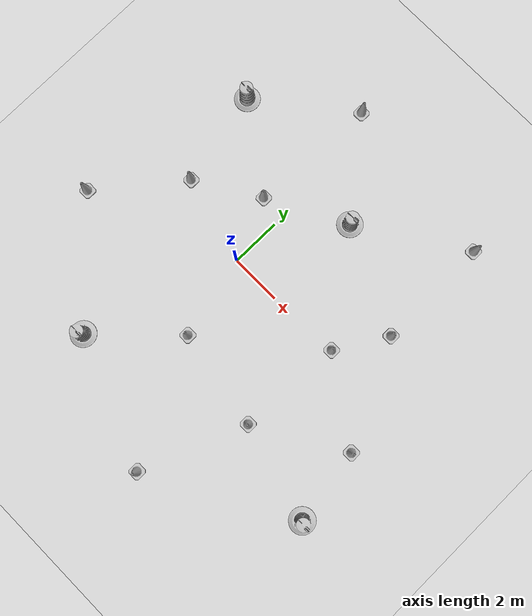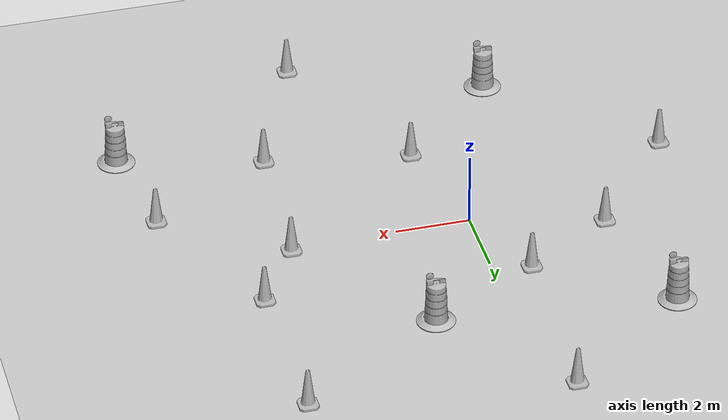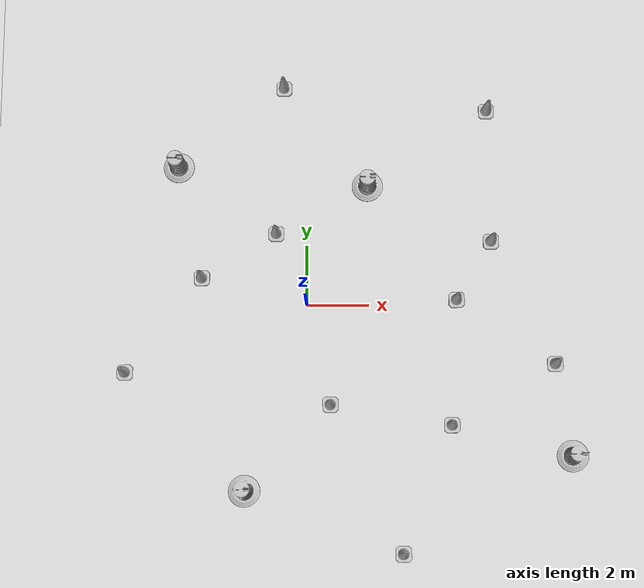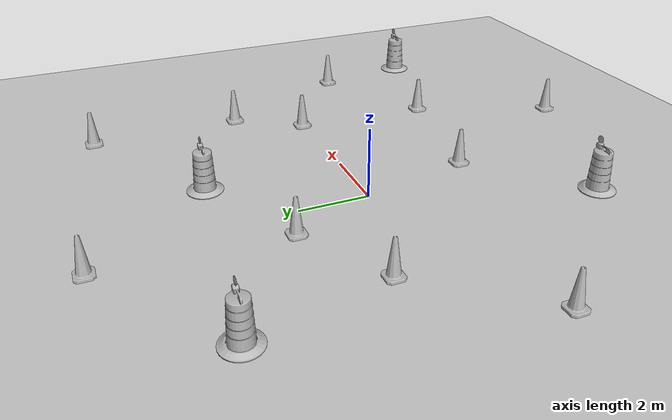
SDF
<sdf version="1.7">
 <world name="default">
  <light name="sun" type="directional">
   <pose>0 0 10 0 -0 0</pose>
   <diffuse>0.8 0.8 0.8 1</diffuse>
   <specular>0.2 0.2 0.2 1</specular>
   <attenuation>
    <range>1000</range>
    <constant>0.9</constant>
    <linear>0.01</linear>
    <quadratic>0.001</quadratic>
   </attenuation>
   <direction>-0.5 0.1 -0.9</direction>
   <spot><inner_angle>0</inner_angle><outer_angle>0</outer_angle><falloff>0</falloff></spot>
  </light>
  <model name="ground_plane">
   <static>1</static>
   <link name="link">
    <collision name="collision">
     <geometry><plane><normal>0 0 1</normal><size>100 100</size></plane></geometry>
     <surface>
      <contact><collide_bitmask>65535</collide_bitmask></contact>
      <friction><ode><mu>100</mu><mu2>50</mu2></ode></friction>
     </surface>
    </collision>
    <visual name="visual">
     <cast_shadows>0</cast_shadows>
     <geometry><plane><normal>0 0 1</normal><size>100 100</size></plane></geometry>
     <material>
      <script><uri>file://media/materials/scripts/gazebo.material</uri><name>Gazebo/Grey</name></script>
     </material>
    </visual>
   </link>
  </model>
  <gravity>0 0 -9.8</gravity>
  <magnetic_field>6e-06 2.3e-05 -4.2e-05</magnetic_field>
  <atmosphere type="adiabatic"/>
  <physics type="ode">
   <max_step_size>0.001</max_step_size>
   <real_time_factor>1</real_time_factor>
   <real_time_update_rate>1000</real_time_update_rate>
  </physics>
  <scene><ambient>0.4 0.4 0.4 1</ambient><background>0.7 0.7 0.7 1</background><shadows>1</shadows></scene>
  <spherical_coordinates>
   <surface_model>EARTH_WGS84</surface_model>
   <latitude_deg>0</latitude_deg>
   <longitude_deg>0</longitude_deg>
   <elevation>0</elevation>
   <heading_deg>0</heading_deg>
  </spherical_coordinates>
  <model name="Construction Barrel">
   <link name="link">
    <inertial>
     <pose>0 0 0.4 0 -0 0</pose>
     <mass>500</mass>
     <inertia><ixx>51.2096</ixx><iyy>51.2096</iyy><izz>25</izz><ixy>0</ixy><ixz>0</ixz><iyz>0</iyz></inertia>
    </inertial>
    <collision name="collision">
     <geometry><mesh><uri>model://construction_barrel/meshes/construction_barrel.dae</uri></mesh></geometry>
    </collision>
    <visual name="visual">
     <geometry><mesh><uri>model://construction_barrel/meshes/construction_barrel.dae</uri></mesh></geometry>
    </visual>
   </link>
   <pose>-4.24328 4.70581 1e-06 3e-06 2e-06 -2.3e-05</pose>
  </model>
  <model name="Construction Barrel_clone">
   <link name="link">
    <inertial>
     <pose>0 0 0.4 0 -0 0</pose>
     <mass>500</mass>
     <inertia><ixx>51.2096</ixx><iyy>51.2096</iyy><izz>25</izz><ixy>0</ixy><ixz>0</ixz><iyz>0</iyz></inertia>
    </inertial>
    <collision name="collision">
     <geometry><mesh><uri>model://construction_barrel/meshes/construction_barrel.dae</uri></mesh></geometry>
    </collision>
    <visual name="visual">
     <geometry><mesh><uri>model://construction_barrel/meshes/construction_barrel.dae</uri></mesh></geometry>
    </visual>
   </link>
   <pose>1.99992 3.99997 1e-06 3e-06 2e-06 -2.4e-05</pose>
  </model>
  <model name="Construction Barrel_clone_0">
   <link name="link">
    <inertial>
     <pose>0 0 0.4 0 -0 0</pose>
     <mass>500</mass>
     <inertia><ixx>51.2096</ixx><iyy>51.2096</iyy><izz>25</izz><ixy>0</ixy><ixz>0</ixz><iyz>0</iyz></inertia>
    </inertial>
    <collision name="collision">
     <geometry><mesh><uri>model://construction_barrel/meshes/construction_barrel.dae</uri></mesh></geometry>
    </collision>
    <visual name="visual">
     <geometry><mesh><uri>model://construction_barrel/meshes/construction_barrel.dae</uri></mesh></geometry>
    </visual>
   </link>
   <pose>-2.04039 -5.97341 0 0 0 -2.7e-05</pose>
  </model>
  <model name="Construction Barrel_clone_1">
   <link name="link">
    <inertial>
     <pose>0 0 0.4 0 -0 0</pose>
     <mass>500</mass>
     <inertia><ixx>51.2096</ixx><iyy>51.2096</iyy><izz>25</izz><ixy>0</ixy><ixz>0</ixz><iyz>0</iyz></inertia>
    </inertial>
    <collision name="collision">
     <geometry><mesh><uri>model://construction_barrel/meshes/construction_barrel.dae</uri></mesh></geometry>
    </collision>
    <visual name="visual">
     <geometry><mesh><uri>model://construction_barrel/meshes/construction_barrel.dae</uri></mesh></geometry>
    </visual>
   </link>
   <pose>8.45115 -4.97462 -0 0 0 -2.6e-05</pose>
  </model>
  <model name="Construction Cone">
   <link name="link">
    <collision name="collision">
     <geometry>
      <mesh><scale>10 10 10</scale><uri>model://construction_cone/meshes/construction_cone.dae</uri></mesh>
     </geometry>
    </collision>
    <visual name="visual">
     <geometry>
      <mesh><scale>10 10 10</scale><uri>model://construction_cone/meshes/construction_cone.dae</uri></mesh>
     </geometry>
    </visual>
    <inertial>
     <inertia><ixx>1</ixx><ixy>0</ixy><ixz>0</ixz><iyy>1</iyy><iyz>0</iyz><izz>1</izz></inertia>
     <mass>1</mass>
    </inertial>
   </link>
   <pose>0.726143 -3.2505 -0 0 -0 0</pose>
  </model>
  <model name="Construction Cone_clone">
   <link name="link">
    <collision name="collision">
     <geometry>
      <mesh><scale>10 10 10</scale><uri>model://construction_cone/meshes/construction_cone.dae</uri></mesh>
     </geometry>
    </collision>
    <visual name="visual">
     <geometry>
      <mesh><scale>10 10 10</scale><uri>model://construction_cone/meshes/construction_cone.dae</uri></mesh>
     </geometry>
    </visual>
    <inertial>
     <inertia><ixx>1</ixx><ixy>0</ixy><ixz>0</ixz><iyy>1</iyy><iyz>0</iyz><izz>1</izz></inertia>
     <mass>1</mass>
    </inertial>
   </link>
   <pose>4.86082 0.137367 -0 0 -0 0</pose>
  </model>
  <model name="Construction Cone_clone_0">
   <link name="link">
    <collision name="collision">
     <geometry>
      <mesh><scale>10 10 10</scale><uri>model://construction_cone/meshes/construction_cone.dae</uri></mesh>
     </geometry>
    </collision>
    <visual name="visual">
     <geometry>
      <mesh><scale>10 10 10</scale><uri>model://construction_cone/meshes/construction_cone.dae</uri></mesh>
     </geometry>
    </visual>
    <inertial>
     <inertia><ixx>1</ixx><ixy>0</ixy><ixz>0</ixz><iyy>1</iyy><iyz>0</iyz><izz>1</izz></inertia>
     <mass>1</mass>
    </inertial>
   </link>
   <pose>4.62408 -3.94667 -0 0 -0 0</pose>
  </model>
  <model name="Construction Cone_clone_1">
   <link name="link">
    <collision name="collision">
     <geometry>
      <mesh><scale>10 10 10</scale><uri>model://construction_cone/meshes/construction_cone.dae</uri></mesh>
     </geometry>
    </collision>
    <visual name="visual">
     <geometry>
      <mesh><scale>10 10 10</scale><uri>model://construction_cone/meshes/construction_cone.dae</uri></mesh>
     </geometry>
    </visual>
    <inertial>
     <inertia><ixx>1</ixx><ixy>0</ixy><ixz>0</ixz><iyy>1</iyy><iyz>0</iyz><izz>1</izz></inertia>
     <mass>1</mass>
    </inertial>
   </link>
   <pose>-1.0102 2.40758 -0 0 -0 0</pose>
  </model>
  <model name="Construction Cone_clone_2">
   <link name="link">
    <collision name="collision">
     <geometry>
      <mesh><scale>10 10 10</scale><uri>model://construction_cone/meshes/construction_cone.dae</uri></mesh>
     </geometry>
    </collision>
    <visual name="visual">
     <geometry>
      <mesh><scale>10 10 10</scale><uri>model://construction_cone/meshes/construction_cone.dae</uri></mesh>
     </geometry>
    </visual>
    <inertial>
     <inertia><ixx>1</ixx><ixy>0</ixy><ixz>0</ixz><iyy>1</iyy><iyz>0</iyz><izz>1</izz></inertia>
     <mass>1</mass>
    </inertial>
   </link>
   <pose>-3.44572 0.943898 -0 0 -0 0</pose>
  </model>
  <model name="Construction Cone_clone_3">
   <link name="link">
    <collision name="collision">
     <geometry>
      <mesh><scale>10 10 10</scale><uri>model://construction_cone/meshes/construction_cone.dae</uri></mesh>
     </geometry>
    </collision>
    <visual name="visual">
     <geometry>
      <mesh><scale>10 10 10</scale><uri>model://construction_cone/meshes/construction_cone.dae</uri></mesh>
     </geometry>
    </visual>
    <inertial>
     <inertia><ixx>1</ixx><ixy>0</ixy><ixz>0</ixz><iyy>1</iyy><iyz>0</iyz><izz>1</izz></inertia>
     <mass>1</mass>
    </inertial>
   </link>
   <pose>6.03606 2.07802 -0 0 -0 0</pose>
  </model>
  <model name="Construction Cone_clone_4">
   <link name="link">
    <collision name="collision">
     <geometry>
      <mesh><scale>10 10 10</scale><uri>model://construction_cone/meshes/construction_cone.dae</uri></mesh>
     </geometry>
    </collision>
    <visual name="visual">
     <geometry>
      <mesh><scale>10 10 10</scale><uri>model://construction_cone/meshes/construction_cone.dae</uri></mesh>
     </geometry>
    </visual>
    <inertial>
     <inertia><ixx>1</ixx><ixy>0</ixy><ixz>0</ixz><iyy>1</iyy><iyz>0</iyz><izz>1</izz></inertia>
     <mass>1</mass>
    </inertial>
   </link>
   <pose>8 -2 -0 0 -0 0</pose>
  </model>
  <model name="Construction Cone_clone_5">
   <link name="link">
    <collision name="collision">
     <geometry>
      <mesh><scale>10 10 10</scale><uri>model://construction_cone/meshes/construction_cone.dae</uri></mesh>
     </geometry>
    </collision>
    <visual name="visual">
     <geometry>
      <mesh><scale>10 10 10</scale><uri>model://construction_cone/meshes/construction_cone.dae</uri></mesh>
     </geometry>
    </visual>
    <inertial>
     <inertia><ixx>1</ixx><ixy>0</ixy><ixz>0</ixz><iyy>1</iyy><iyz>0</iyz><izz>1</izz></inertia>
     <mass>1</mass>
    </inertial>
   </link>
   <pose>-5.90447 -2.13684 -0 0 -0 0</pose>
  </model>
  <model name="Construction Cone_clone_6">
   <link name="link">
    <collision name="collision">
     <geometry>
      <mesh><scale>10 10 10</scale><uri>model://construction_cone/meshes/construction_cone.dae</uri></mesh>
     </geometry>
    </collision>
    <visual name="visual">
     <geometry>
      <mesh><scale>10 10 10</scale><uri>model://construction_cone/meshes/construction_cone.dae</uri></mesh>
     </geometry>
    </visual>
    <inertial>
     <inertia><ixx>1</ixx><ixy>0</ixy><ixz>0</ixz><iyy>1</iyy><iyz>0</iyz><izz>1</izz></inertia>
     <mass>1</mass>
    </inertial>
   </link>
   <pose>3 -8 -6e-06 -4e-06 0 0</pose>
  </model>
  <model name="Construction Cone_clone_7">
   <link name="link">
    <collision name="collision">
     <geometry>
      <mesh><scale>10 10 10</scale><uri>model://construction_cone/meshes/construction_cone.dae</uri></mesh>
     </geometry>
    </collision>
    <visual name="visual">
     <geometry>
      <mesh><scale>10 10 10</scale><uri>model://construction_cone/meshes/construction_cone.dae</uri></mesh>
     </geometry>
    </visual>
    <inertial>
     <inertia><ixx>1</ixx><ixy>0</ixy><ixz>0</ixz><iyy>1</iyy><iyz>0</iyz><izz>1</izz></inertia>
     <mass>1</mass>
    </inertial>
   </link>
   <pose>-0.742612 7.41128 -5e-06 -4e-06 1e-06 0</pose>
  </model>
  <model name="Construction Cone_clone_8">
   <link name="link">
    <collision name="collision">
     <geometry>
      <mesh><scale>10 10 10</scale><uri>model://construction_cone/meshes/construction_cone.dae</uri></mesh>
     </geometry>
    </collision>
    <visual name="visual">
     <geometry>
      <mesh><scale>10 10 10</scale><uri>model://construction_cone/meshes/construction_cone.dae</uri></mesh>
     </geometry>
    </visual>
    <inertial>
     <inertia><ixx>1</ixx><ixy>0</ixy><ixz>0</ixz><iyy>1</iyy><iyz>0</iyz><izz>1</izz></inertia>
     <mass>1</mass>
    </inertial>
   </link>
   <pose>6 6.5483 -0 0 -1e-06 0</pose>
  </model>
 </world>
</sdf>
